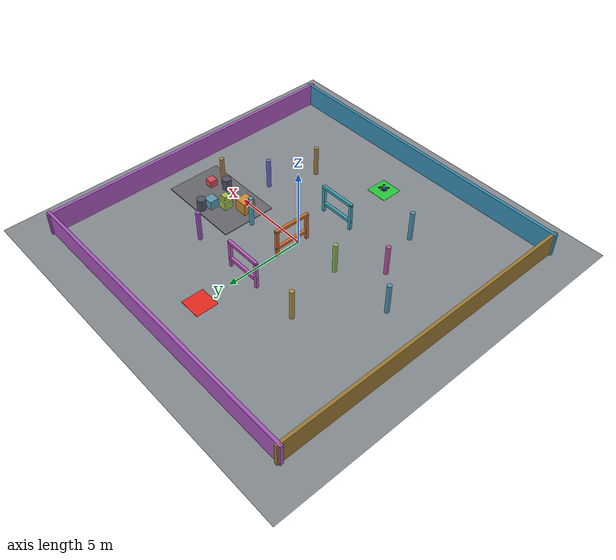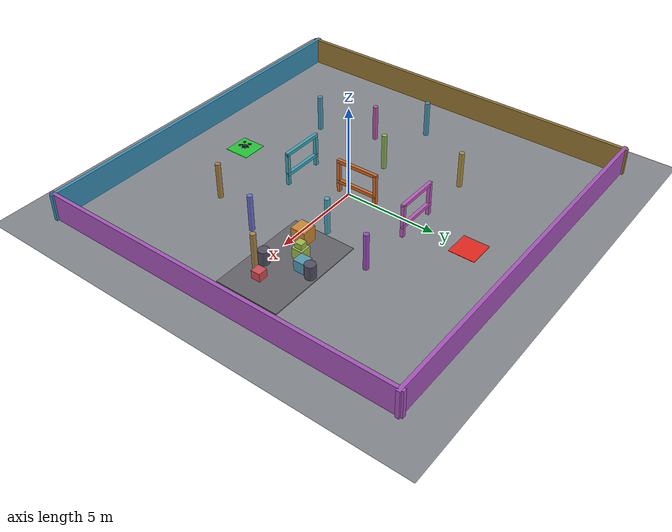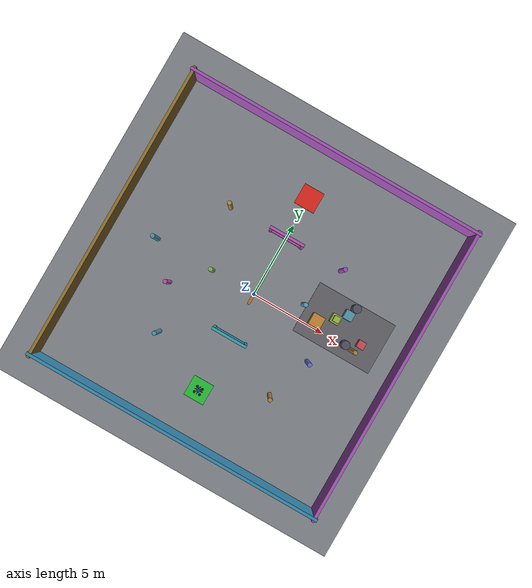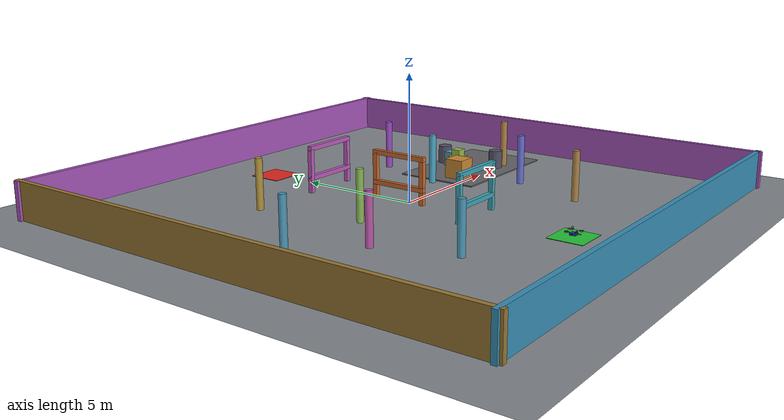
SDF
<?xml version="1.0"?>
<sdf version="1.9">
  <world name="uav_obstacle_course">
    <physics name="fast_step" type="ignored">
      <max_step_size>0.002</max_step_size>
      <real_time_factor>1.0</real_time_factor>
    </physics>

    <plugin filename="gz-sim-physics-system" name="gz::sim::systems::Physics"/>
    <plugin filename="gz-sim-user-commands-system" name="gz::sim::systems::UserCommands"/>
    <plugin filename="gz-sim-scene-broadcaster-system" name="gz::sim::systems::SceneBroadcaster"/>
    <plugin filename="gz-sim-sensors-system" name="gz::sim::systems::Sensors">
      <render_engine>ogre2</render_engine>
    </plugin>
    <plugin filename="gz-sim-imu-system" name="gz::sim::systems::Imu"/>

    <scene>
      <ambient>0.42 0.44 0.46 1</ambient>
      <background>0.66 0.71 0.76 1</background>
      <shadows>true</shadows>
    </scene>

    <light type="directional" name="sun">
      <pose>0 0 12 0 0 0</pose>
      <cast_shadows>true</cast_shadows>
      <diffuse>0.95 0.95 0.92 1</diffuse>
      <specular>0.2 0.2 0.2 1</specular>
      <direction>-0.35 0.25 -0.9</direction>
    </light>

    <!-- Large flat ground plane. -->
    <model name="ground_plane">
      <static>true</static>
      <link name="link">
        <collision name="collision">
          <geometry>
            <plane>
              <normal>0 0 1</normal>
              <size>26 26</size>
            </plane>
          </geometry>
          <surface>
            <friction>
              <ode>
                <mu>20</mu>
                <mu2>20</mu2>
              </ode>
            </friction>
          </surface>
        </collision>
        <visual name="visual">
          <geometry>
            <plane>
              <normal>0 0 1</normal>
              <size>26 26</size>
            </plane>
          </geometry>
          <material>
            <ambient>0.50 0.52 0.54 1</ambient>
            <diffuse>0.52 0.54 0.56 1</diffuse>
          </material>
        </visual>
      </link>
    </model>

    <!-- Surrounding perimeter walls. The central route stays inside. -->
    <model name="wall_north">
      <static>true</static>
      <pose>0 10 0.75 0 0 0</pose>
      <link name="link">
        <collision name="collision"><geometry><box><size>20.4 0.20 1.5</size></box></geometry></collision>
        <visual name="visual"><geometry><box><size>20.4 0.20 1.5</size></box></geometry><material><ambient>0.48 0.28 0.52 1</ambient><diffuse>0.66 0.34 0.74 1</diffuse></material></visual>
      </link>
    </model>
    <model name="wall_south">
      <static>true</static>
      <pose>0 -10 0.75 0 0 0</pose>
      <link name="link">
        <collision name="collision"><geometry><box><size>20.4 0.20 1.5</size></box></geometry></collision>
        <visual name="visual"><geometry><box><size>20.4 0.20 1.5</size></box></geometry><material><ambient>0.22 0.42 0.55 1</ambient><diffuse>0.22 0.56 0.72 1</diffuse></material></visual>
      </link>
    </model>
    <model name="wall_east">
      <static>true</static>
      <pose>10 0 0.75 0 0 0</pose>
      <link name="link">
        <collision name="collision"><geometry><box><size>0.20 20.4 1.5</size></box></geometry></collision>
        <visual name="visual"><geometry><box><size>0.20 20.4 1.5</size></box></geometry><material><ambient>0.48 0.28 0.52 1</ambient><diffuse>0.66 0.34 0.74 1</diffuse></material></visual>
      </link>
    </model>
    <model name="wall_west">
      <static>true</static>
      <pose>-10 0 0.75 0 0 0</pose>
      <link name="link">
        <collision name="collision"><geometry><box><size>0.20 20.4 1.5</size></box></geometry></collision>
        <visual name="visual"><geometry><box><size>0.20 20.4 1.5</size></box></geometry><material><ambient>0.45 0.36 0.16 1</ambient><diffuse>0.60 0.47 0.20 1</diffuse></material></visual>
      </link>
    </model>

    <!-- Columns on both sides of the south-to-north route. -->
    <model name="column_00">
      <static>true</static>
      <pose>-4 -5 1.0 0 0 0</pose>
      <link name="link"><collision name="collision"><geometry><cylinder><radius>0.14</radius><length>2.0</length></cylinder></geometry></collision><visual name="visual"><geometry><cylinder><radius>0.14</radius><length>2.0</length></cylinder></geometry><material><ambient>0.26 0.44 0.52 1</ambient><diffuse>0.30 0.60 0.72 1</diffuse></material></visual></link>
    </model>
    <model name="column_01">
      <static>true</static>
      <pose>4 -5 1.0 0 0 0</pose>
      <link name="link"><collision name="collision"><geometry><cylinder><radius>0.14</radius><length>2.0</length></cylinder></geometry></collision><visual name="visual"><geometry><cylinder><radius>0.14</radius><length>2.0</length></cylinder></geometry><material><ambient>0.44 0.34 0.20 1</ambient><diffuse>0.68 0.52 0.28 1</diffuse></material></visual></link>
    </model>
    <model name="column_02">
      <static>true</static>
      <pose>-5 -2 1.0 0 0 0</pose>
      <link name="link"><collision name="collision"><geometry><cylinder><radius>0.14</radius><length>2.0</length></cylinder></geometry></collision><visual name="visual"><geometry><cylinder><radius>0.14</radius><length>2.0</length></cylinder></geometry><material><ambient>0.50 0.24 0.46 1</ambient><diffuse>0.74 0.34 0.66 1</diffuse></material></visual></link>
    </model>
    <model name="column_03">
      <static>true</static>
      <pose>5 -2 1.0 0 0 0</pose>
      <link name="link"><collision name="collision"><geometry><cylinder><radius>0.14</radius><length>2.0</length></cylinder></geometry></collision><visual name="visual"><geometry><cylinder><radius>0.14</radius><length>2.0</length></cylinder></geometry><material><ambient>0.28 0.30 0.62 1</ambient><diffuse>0.42 0.44 0.82 1</diffuse></material></visual></link>
    </model>
    <model name="column_04">
      <static>true</static>
      <pose>-3 0 1.0 0 0 0</pose>
      <link name="link"><collision name="collision"><geometry><cylinder><radius>0.14</radius><length>2.0</length></cylinder></geometry></collision><visual name="visual"><geometry><cylinder><radius>0.14</radius><length>2.0</length></cylinder></geometry><material><ambient>0.36 0.52 0.20 1</ambient><diffuse>0.54 0.72 0.34 1</diffuse></material></visual></link>
    </model>
    <model name="column_05">
      <static>true</static>
      <pose>3 1 1.0 0 0 0</pose>
      <link name="link"><collision name="collision"><geometry><cylinder><radius>0.14</radius><length>2.0</length></cylinder></geometry></collision><visual name="visual"><geometry><cylinder><radius>0.14</radius><length>2.0</length></cylinder></geometry><material><ambient>0.22 0.48 0.56 1</ambient><diffuse>0.30 0.66 0.78 1</diffuse></material></visual></link>
    </model>
    <model name="column_06">
      <static>true</static>
      <pose>-4 4 1.0 0 0 0</pose>
      <link name="link"><collision name="collision"><geometry><cylinder><radius>0.14</radius><length>2.0</length></cylinder></geometry></collision><visual name="visual"><geometry><cylinder><radius>0.14</radius><length>2.0</length></cylinder></geometry><material><ambient>0.50 0.40 0.16 1</ambient><diffuse>0.70 0.58 0.24 1</diffuse></material></visual></link>
    </model>
    <model name="column_07">
      <static>true</static>
      <pose>4 4 1.0 0 0 0</pose>
      <link name="link"><collision name="collision"><geometry><cylinder><radius>0.14</radius><length>2.0</length></cylinder></geometry></collision><visual name="visual"><geometry><cylinder><radius>0.14</radius><length>2.0</length></cylinder></geometry><material><ambient>0.42 0.22 0.56 1</ambient><diffuse>0.62 0.30 0.76 1</diffuse></material></visual></link>
    </model>
    <model name="column_08">
      <static>true</static>
      <pose>-7 0 1.0 0 0 0</pose>
      <link name="link"><collision name="collision"><geometry><cylinder><radius>0.14</radius><length>2.0</length></cylinder></geometry></collision><visual name="visual"><geometry><cylinder><radius>0.14</radius><length>2.0</length></cylinder></geometry><material><ambient>0.26 0.44 0.52 1</ambient><diffuse>0.30 0.60 0.72 1</diffuse></material></visual></link>
    </model>
    <model name="column_09">
      <static>true</static>
      <pose>7 0 1.0 0 0 0</pose>
      <link name="link"><collision name="collision"><geometry><cylinder><radius>0.14</radius><length>2.0</length></cylinder></geometry></collision><visual name="visual"><geometry><cylinder><radius>0.14</radius><length>2.0</length></cylinder></geometry><material><ambient>0.44 0.34 0.20 1</ambient><diffuse>0.68 0.52 0.28 1</diffuse></material></visual></link>
    </model>

    <!-- Initial model placement for sensor and scene validation. -->
    <model name="gate_south">
      <static>true</static>
      <pose>0 -3 0 0 0 0</pose>
      <link name="link">
        <collision name="left_post_collision"><pose>-1.1 0 0.9 0 0 0</pose><geometry><box><size>0.18 0.18 1.8</size></box></geometry></collision>
        <visual name="left_post_visual"><pose>-1.1 0 0.9 0 0 0</pose><geometry><box><size>0.18 0.18 1.8</size></box></geometry><material><ambient>0.20 0.45 0.50 1</ambient><diffuse>0.25 0.65 0.72 1</diffuse></material></visual>
        <collision name="right_post_collision"><pose>1.1 0 0.9 0 0 0</pose><geometry><box><size>0.18 0.18 1.8</size></box></geometry></collision>
        <visual name="right_post_visual"><pose>1.1 0 0.9 0 0 0</pose><geometry><box><size>0.18 0.18 1.8</size></box></geometry><material><ambient>0.20 0.45 0.50 1</ambient><diffuse>0.25 0.65 0.72 1</diffuse></material></visual>
        <collision name="bottom_rail_collision"><pose>0 0 0.6 0 0 0</pose><geometry><box><size>2.38 0.18 0.18</size></box></geometry></collision>
        <visual name="bottom_rail_visual"><pose>0 0 0.6 0 0 0</pose><geometry><box><size>2.38 0.18 0.18</size></box></geometry><material><ambient>0.20 0.45 0.50 1</ambient><diffuse>0.25 0.65 0.72 1</diffuse></material></visual>
        <collision name="top_rail_collision"><pose>0 0 1.8 0 0 0</pose><geometry><box><size>2.38 0.18 0.18</size></box></geometry></collision>
        <visual name="top_rail_visual"><pose>0 0 1.8 0 0 0</pose><geometry><box><size>2.38 0.18 0.18</size></box></geometry><material><ambient>0.20 0.45 0.50 1</ambient><diffuse>0.25 0.65 0.72 1</diffuse></material></visual>
      </link>
    </model>

    <model name="gate_middle">
      <static>true</static>
      <pose>0 0.5 0 0 0 1.57079632679</pose>
      <link name="link">
        <collision name="left_post_collision"><pose>-1.1 0 0.9 0 0 0</pose><geometry><box><size>0.18 0.18 1.8</size></box></geometry></collision>
        <visual name="left_post_visual"><pose>-1.1 0 0.9 0 0 0</pose><geometry><box><size>0.18 0.18 1.8</size></box></geometry><material><ambient>0.55 0.28 0.12 1</ambient><diffuse>0.80 0.42 0.18 1</diffuse></material></visual>
        <collision name="right_post_collision"><pose>1.1 0 0.9 0 0 0</pose><geometry><box><size>0.18 0.18 1.8</size></box></geometry></collision>
        <visual name="right_post_visual"><pose>1.1 0 0.9 0 0 0</pose><geometry><box><size>0.18 0.18 1.8</size></box></geometry><material><ambient>0.55 0.28 0.12 1</ambient><diffuse>0.80 0.42 0.18 1</diffuse></material></visual>
        <collision name="bottom_rail_collision"><pose>0 0 0.6 0 0 0</pose><geometry><box><size>2.38 0.18 0.18</size></box></geometry></collision>
        <visual name="bottom_rail_visual"><pose>0 0 0.6 0 0 0</pose><geometry><box><size>2.38 0.18 0.18</size></box></geometry><material><ambient>0.55 0.28 0.12 1</ambient><diffuse>0.80 0.42 0.18 1</diffuse></material></visual>
        <collision name="top_rail_collision"><pose>0 0 1.8 0 0 0</pose><geometry><box><size>2.38 0.18 0.18</size></box></geometry></collision>
        <visual name="top_rail_visual"><pose>0 0 1.8 0 0 0</pose><geometry><box><size>2.38 0.18 0.18</size></box></geometry><material><ambient>0.55 0.28 0.12 1</ambient><diffuse>0.80 0.42 0.18 1</diffuse></material></visual>
      </link>
    </model>

    <model name="gate_north">
      <static>true</static>
      <pose>0 4 0 0 0 0</pose>
      <link name="link">
        <collision name="left_post_collision"><pose>-1.1 0 0.9 0 0 0</pose><geometry><box><size>0.18 0.18 1.8</size></box></geometry></collision>
        <visual name="left_post_visual"><pose>-1.1 0 0.9 0 0 0</pose><geometry><box><size>0.18 0.18 1.8</size></box></geometry><material><ambient>0.50 0.25 0.50 1</ambient><diffuse>0.74 0.36 0.74 1</diffuse></material></visual>
        <collision name="right_post_collision"><pose>1.1 0 0.9 0 0 0</pose><geometry><box><size>0.18 0.18 1.8</size></box></geometry></collision>
        <visual name="right_post_visual"><pose>1.1 0 0.9 0 0 0</pose><geometry><box><size>0.18 0.18 1.8</size></box></geometry><material><ambient>0.50 0.25 0.50 1</ambient><diffuse>0.74 0.36 0.74 1</diffuse></material></visual>
        <collision name="bottom_rail_collision"><pose>0 0 0.6 0 0 0</pose><geometry><box><size>2.38 0.18 0.18</size></box></geometry></collision>
        <visual name="bottom_rail_visual"><pose>0 0 0.6 0 0 0</pose><geometry><box><size>2.38 0.18 0.18</size></box></geometry><material><ambient>0.50 0.25 0.50 1</ambient><diffuse>0.74 0.36 0.74 1</diffuse></material></visual>
        <collision name="top_rail_collision"><pose>0 0 1.8 0 0 0</pose><geometry><box><size>2.38 0.18 0.18</size></box></geometry></collision>
        <visual name="top_rail_visual"><pose>0 0 1.8 0 0 0</pose><geometry><box><size>2.38 0.18 0.18</size></box></geometry><material><ambient>0.50 0.25 0.50 1</ambient><diffuse>0.74 0.36 0.74 1</diffuse></material></visual>
      </link>
    </model>

    <!-- Large object-stacking platform on the east side. -->
    <model name="object_platform">
      <static>true</static>
      <pose>6 1 0.025 0 0 0</pose>
      <link name="link">
        <collision name="collision"><geometry><box><size>5.5 3.5 0.05</size></box></geometry></collision>
        <visual name="visual"><geometry><box><size>5.5 3.5 0.05</size></box></geometry><material><ambient>0.30 0.30 0.32 1</ambient><diffuse>0.40 0.40 0.42 1</diffuse></material></visual>
      </link>
    </model>

    <model name="object_crate_large">
      <static>true</static>
      <pose>4.2 0.5 0.45 0 0 0</pose>
      <link name="link"><collision name="collision"><geometry><box><size>0.8 0.8 0.8</size></box></geometry></collision><visual name="visual"><geometry><box><size>0.8 0.8 0.8</size></box></geometry><material><ambient>0.56 0.36 0.14 1</ambient><diffuse>0.80 0.54 0.20 1</diffuse></material></visual></link>
    </model>
    <model name="object_crate_medium">
      <static>true</static>
      <pose>5.8 1.8 0.35 0 0 0</pose>
      <link name="link"><collision name="collision"><geometry><box><size>0.6 0.6 0.6</size></box></geometry></collision><visual name="visual"><geometry><box><size>0.6 0.6 0.6</size></box></geometry><material><ambient>0.24 0.42 0.48 1</ambient><diffuse>0.34 0.60 0.70 1</diffuse></material></visual></link>
    </model>
    <model name="object_crate_small">
      <static>true</static>
      <pose>7.4 0.6 0.25 0 0 0</pose>
      <link name="link"><collision name="collision"><geometry><box><size>0.5 0.5 0.5</size></box></geometry></collision><visual name="visual"><geometry><box><size>0.5 0.5 0.5</size></box></geometry><material><ambient>0.55 0.20 0.22 1</ambient><diffuse>0.82 0.30 0.34 1</diffuse></material></visual></link>
    </model>
    <model name="object_barrel_1">
      <static>true</static>
      <pose>6.5 0.1 0.4 0 0 0</pose>
      <link name="link"><collision name="collision"><geometry><cylinder><radius>0.28</radius><length>0.8</length></cylinder></geometry></collision><visual name="visual"><geometry><cylinder><radius>0.28</radius><length>0.8</length></cylinder></geometry><material><ambient>0.25 0.25 0.30 1</ambient><diffuse>0.32 0.32 0.40 1</diffuse></material></visual></link>
    </model>
    <model name="object_barrel_2">
      <static>true</static>
      <pose>6.0 2.4 0.4 0 0 0</pose>
      <link name="link"><collision name="collision"><geometry><cylinder><radius>0.28</radius><length>0.8</length></cylinder></geometry></collision><visual name="visual"><geometry><cylinder><radius>0.28</radius><length>0.8</length></cylinder></geometry><material><ambient>0.25 0.25 0.30 1</ambient><diffuse>0.32 0.32 0.40 1</diffuse></material></visual></link>
    </model>
    <model name="object_stack_base">
      <static>true</static>
      <pose>5.2 1.2 0.35 0 0 0</pose>
      <link name="link"><collision name="collision"><geometry><box><size>0.6 0.6 0.6</size></box></geometry></collision><visual name="visual"><geometry><box><size>0.6 0.6 0.6</size></box></geometry><material><ambient>0.42 0.52 0.20 1</ambient><diffuse>0.62 0.74 0.30 1</diffuse></material></visual></link>
    </model>
    <model name="object_stack_top">
      <static>true</static>
      <pose>5.2 1.2 0.75 0 0 0</pose>
      <link name="link"><collision name="collision"><geometry><box><size>0.4 0.4 0.4</size></box></geometry></collision><visual name="visual"><geometry><box><size>0.4 0.4 0.4</size></box></geometry><material><ambient>0.42 0.52 0.20 1</ambient><diffuse>0.62 0.74 0.30 1</diffuse></material></visual></link>
    </model>

    <!-- Start and goal pads. -->
    <model name="start_pad">
      <static>true</static>
      <pose>0 -7 0.01 0 0 0</pose>
      <link name="link">
        <collision name="collision"><geometry><box><size>1.4 1.4 0.02</size></box></geometry></collision>
        <visual name="visual"><geometry><box><size>1.4 1.4 0.02</size></box></geometry><material><ambient>0.10 0.55 0.15 1</ambient><diffuse>0.15 0.78 0.22 1</diffuse></material></visual>
      </link>
    </model>
    <model name="goal_pad">
      <static>true</static>
      <pose>0 7 0.01 0 0 0</pose>
      <link name="link">
        <collision name="collision"><geometry><box><size>1.4 1.4 0.02</size></box></geometry></collision>
        <visual name="visual"><geometry><box><size>1.4 1.4 0.02</size></box></geometry><material><ambient>0.65 0.10 0.08 1</ambient><diffuse>0.90 0.16 0.12 1</diffuse></material></visual>
      </link>
    </model>

    <!-- UAV starts on the green pad, facing north along the central corridor. -->
    <include>
      <uri>model://uav_quad_mid360</uri>
      <name>uav_quad</name>
      <pose>0 -7 0.11 0 0 1.57079632679</pose>
    </include>
  </world>
</sdf>

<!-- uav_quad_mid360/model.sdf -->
<sdf version="1.9">
  <model name="uav_quad_mid360" xmlns:gz="http://gazebosim.org/schema">
    <link name="base_link">
      <inertial>
        <mass>1.5</mass>
        <inertia>
          <ixx>0.035</ixx>
          <iyy>0.035</iyy>
          <izz>0.06</izz>
        </inertia>
      </inertial>
      <collision name="collision">
        <geometry><box><size>0.55 0.55 0.10</size></box></geometry>
      </collision>
      <visual name="body_fuselage">
        <geometry><box><size>0.24 0.20 0.08</size></box></geometry>
        <material>
          <ambient>0.04 0.18 0.55 1</ambient>
          <diffuse>0.05 0.25 0.85 1</diffuse>
        </material>
      </visual>
      <visual name="arm_x">
        <pose>0 0 0.02 0 0 0</pose>
        <geometry><box><size>0.55 0.04 0.02</size></box></geometry>
        <material>
          <ambient>0.10 0.10 0.12 1</ambient>
          <diffuse>0.16 0.16 0.18 1</diffuse>
        </material>
      </visual>
      <visual name="arm_y">
        <pose>0 0 0.02 0 0 1.57079632679</pose>
        <geometry><box><size>0.55 0.04 0.02</size></box></geometry>
        <material>
          <ambient>0.10 0.10 0.12 1</ambient>
          <diffuse>0.16 0.16 0.18 1</diffuse>
        </material>
      </visual>
      <visual name="rotor_front_left">
        <pose>0.19 0.19 0.09 0 0 0</pose>
        <geometry><cylinder><radius>0.08</radius><length>0.02</length></cylinder></geometry>
        <material><ambient>0.05 0.05 0.06 1</ambient><diffuse>0.10 0.10 0.12 1</diffuse></material>
      </visual>
      <visual name="rotor_front_right">
        <pose>0.19 -0.19 0.09 0 0 0</pose>
        <geometry><cylinder><radius>0.08</radius><length>0.02</length></cylinder></geometry>
        <material><ambient>0.05 0.05 0.06 1</ambient><diffuse>0.10 0.10 0.12 1</diffuse></material>
      </visual>
      <visual name="rotor_rear_left">
        <pose>-0.19 0.19 0.09 0 0 0</pose>
        <geometry><cylinder><radius>0.08</radius><length>0.02</length></cylinder></geometry>
        <material><ambient>0.05 0.05 0.06 1</ambient><diffuse>0.10 0.10 0.12 1</diffuse></material>
      </visual>
      <visual name="rotor_rear_right">
        <pose>-0.19 -0.19 0.09 0 0 0</pose>
        <geometry><cylinder><radius>0.08</radius><length>0.02</length></cylinder></geometry>
        <material><ambient>0.05 0.05 0.06 1</ambient><diffuse>0.10 0.10 0.12 1</diffuse></material>
      </visual>
    </link>

    <!-- Gazebo cameras look along local +X. Positive pitch rotates +X toward
         the ground, so this forward-looking OAK-D mount has an 18-degree
         downward tilt relative to the UAV body. -->
    <link name="oakd_camera_link">
      <pose relative_to="base_link">0.18 0 0.16 0 0.31415926536 0</pose>
      <inertial>
        <mass>0.1</mass>
        <inertia>
          <ixx>0.0002</ixx>
          <iyy>0.0002</iyy>
          <izz>0.0002</izz>
        </inertia>
      </inertial>
      <visual name="camera_body">
        <geometry><box><size>0.07 0.10 0.035</size></box></geometry>
        <material>
          <ambient>0.55 0.15 0.01 1</ambient>
          <diffuse>0.95 0.32 0.03 1</diffuse>
        </material>
      </visual>
      <visual name="left_lens">
        <pose>0.038 0.028 0 0 0 0</pose>
        <geometry><box><size>0.008 0.022 0.022</size></box></geometry>
        <material>
          <ambient>0.01 0.01 0.015 1</ambient>
          <diffuse>0.01 0.01 0.015 1</diffuse>
        </material>
      </visual>
      <visual name="right_lens">
        <pose>0.038 -0.028 0 0 0 0</pose>
        <geometry><box><size>0.008 0.022 0.022</size></box></geometry>
        <material>
          <ambient>0.01 0.01 0.015 1</ambient>
          <diffuse>0.01 0.01 0.015 1</diffuse>
        </material>
      </visual>
      <sensor name="oakd_imu" type="imu">
        <always_on>true</always_on>
        <update_rate>200</update_rate>
        <topic>/oakd/imu/raw</topic>
        <gz_frame_id>oakd_imu_link</gz_frame_id>
      </sensor>
      <sensor name="oakd_rgbd" type="rgbd_camera">
        <always_on>true</always_on>
        <update_rate>15</update_rate>
        <topic>rgbd_camera</topic>
        <camera>
          <horizontal_fov>1.21</horizontal_fov>
          <image>
            <width>640</width>
            <height>400</height>
          </image>
          <clip>
            <near>0.15</near>
            <far>8.0</far>
          </clip>
          <optical_frame_id>oakd_camera_optical_frame</optical_frame_id>
        </camera>
      </sensor>
    </link>
    <joint name="oakd_fixed_joint" type="fixed">
      <parent>base_link</parent>
      <child>oakd_camera_link</child>
    </joint>

    <!-- MID360 sensor mount. Keep this pose in sync with the
         base_link -> mid360_link static transform published by
         gazebo_harmonic_nav.launch.py. -->
    <link name="mid360_link">
      <pose relative_to="base_link">0.113137085 -0.113137085 0.18 0.7853981634 0 0.5235987756</pose>
      <inertial>
        <mass>0.03</mass>
        <inertia>
          <ixx>0.00001</ixx>
          <iyy>0.00001</iyy>
          <izz>0.00001</izz>
        </inertia>
      </inertial>
      <visual name="mid360_body">
        <geometry><cylinder><radius>0.035</radius><length>0.06</length></cylinder></geometry>
        <material>
          <ambient>0.10 0.35 0.10 1</ambient>
          <diffuse>0.15 0.55 0.20 1</diffuse>
        </material>
      </visual>
      <sensor name="mid360_lidar" type="gpu_lidar">
        <always_on>true</always_on>
        <update_rate>20</update_rate>
        <topic>/mid360</topic>
        <lidar>
          <scan>
            <horizontal>
              <samples>1875</samples>
              <resolution>1</resolution>
              <min_angle>-3.14159265359</min_angle>
              <max_angle>3.14159265359</max_angle>
            </horizontal>
            <vertical>
              <samples>32</samples>
              <resolution>1</resolution>
              <min_angle>-0.12217304764</min_angle>
              <max_angle>0.90757121104</max_angle>
            </vertical>
          </scan>
          <range>
            <min>0.1</min>
            <max>40.0</max>
            <resolution>0.02</resolution>
          </range>
        </lidar>
        <visualize>true</visualize>
      </sensor>
      <sensor name="mid360_imu" type="imu">
        <always_on>true</always_on>
        <update_rate>200</update_rate>
        <topic>/mid360/imu</topic>
        <gz_frame_id>mid360_link</gz_frame_id>
      </sensor>
    </link>
    <joint name="mid360_fixed_joint" type="fixed">
      <parent>base_link</parent>
      <child>mid360_link</child>
    </joint>

    <plugin filename="gz-sim-velocity-control-system" name="gz::sim::systems::VelocityControl">
      <topic>/cmd_vel</topic>
      <link_name>base_link</link_name>
      <initial_linear>0 0 0</initial_linear>
      <initial_angular>0 0 0</initial_angular>
    </plugin>
    <plugin filename="gz-sim-odometry-publisher-system" name="gz::sim::systems::OdometryPublisher">
      <odom_frame>odom</odom_frame>
      <robot_base_frame>base_link</robot_base_frame>
      <!-- 3D pose is required so nvblox receives the full UAV/camera pose. -->
      <dimensions>3</dimensions>
      <odom_topic>/visual_slam/tracking/odometry</odom_topic>
      <tf_topic>/tf</tf_topic>
      <odom_publish_frequency>50</odom_publish_frequency>
    </plugin>
  </model>
</sdf>
